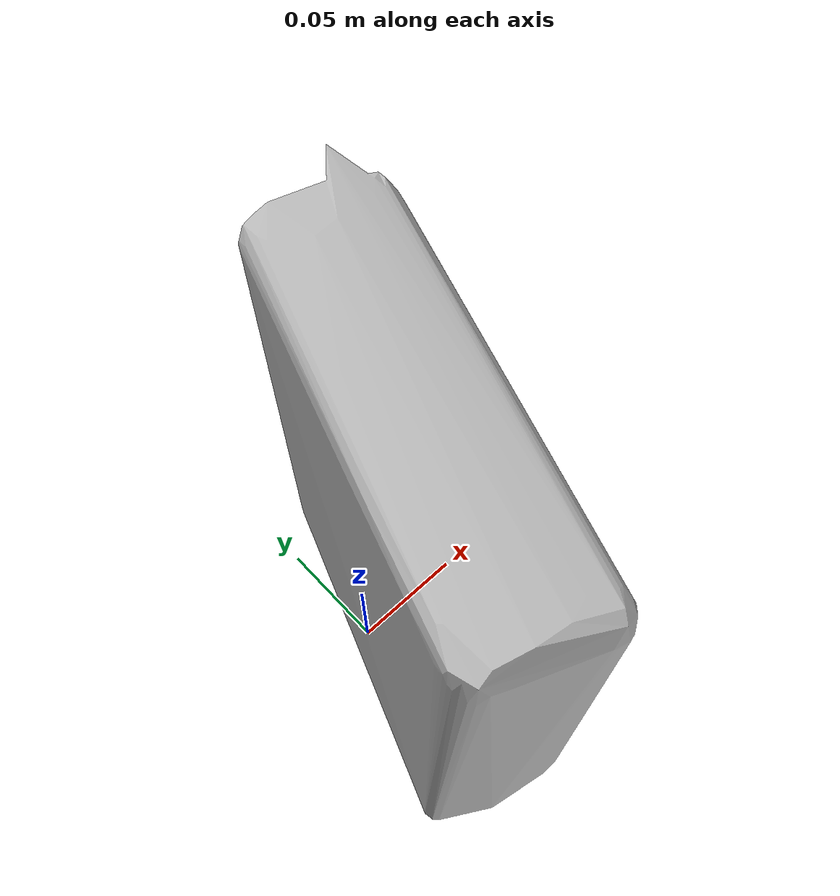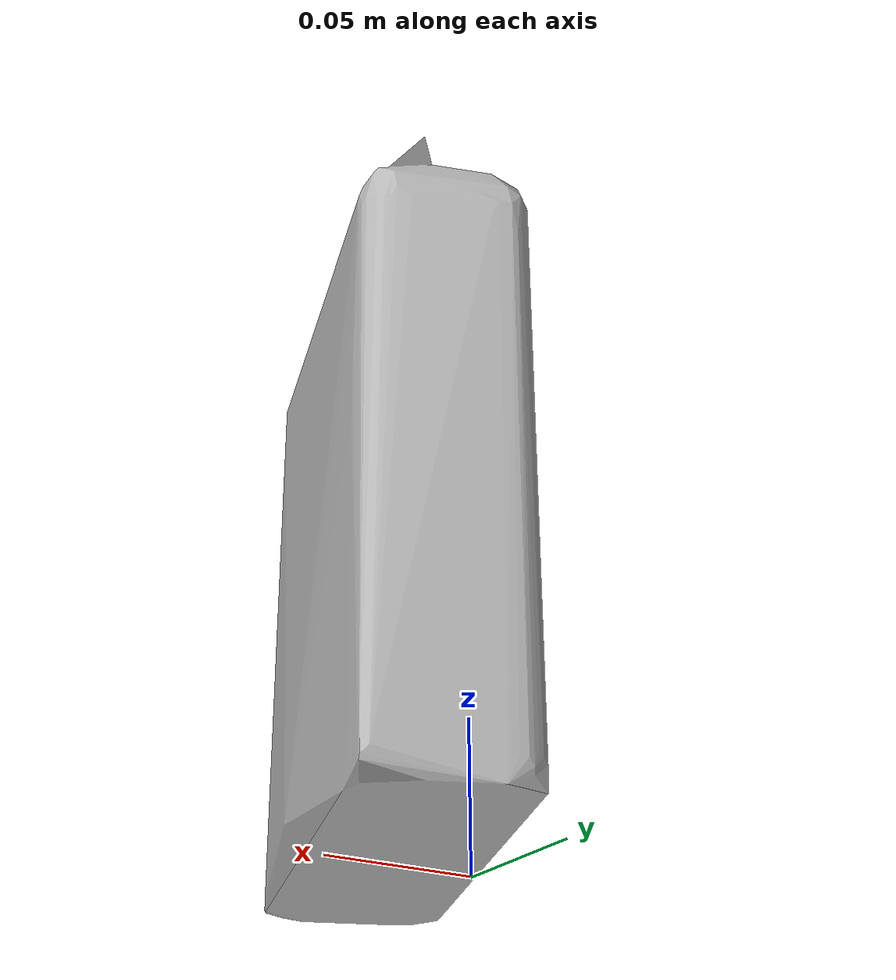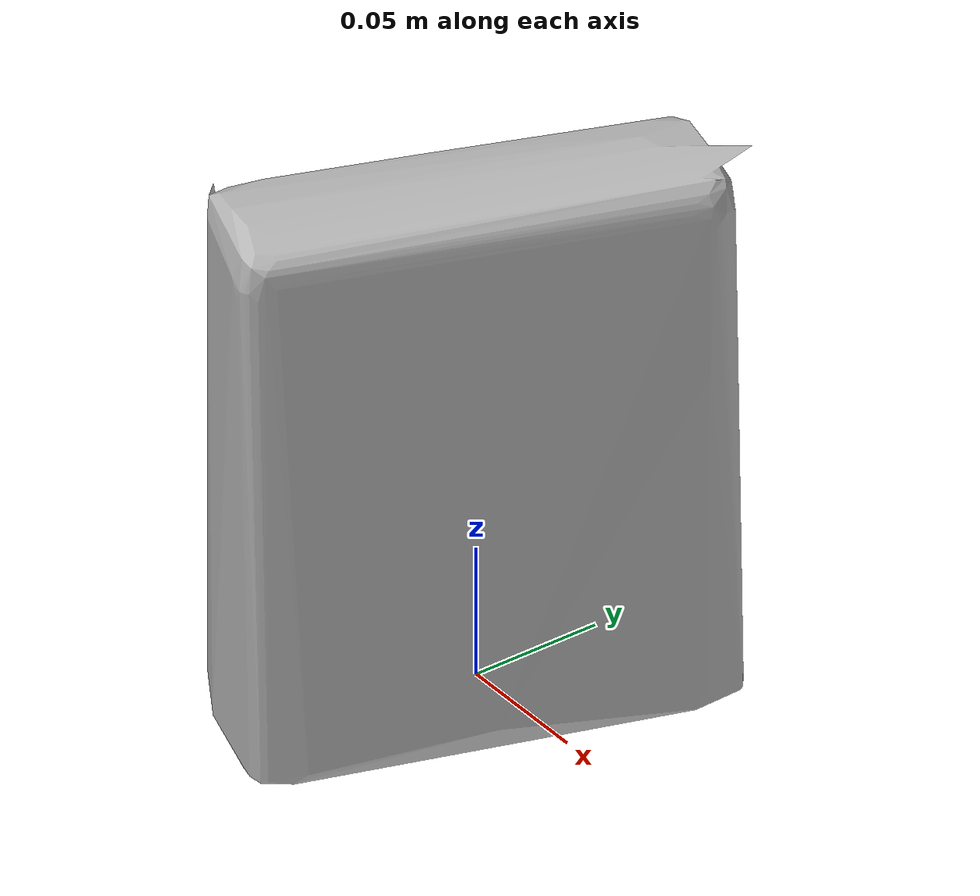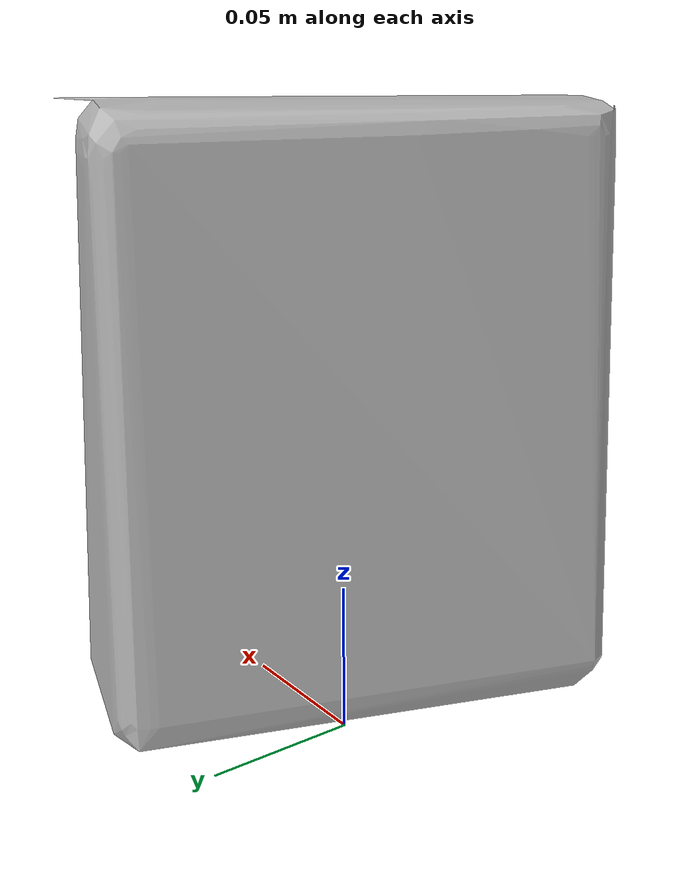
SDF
<?xml version='1.0'?>
<sdf version="1.4">
  <model name="ritz_crackers">
    <static>false</static>
    <link name="link">
      <inertial>
        <pose>0.017623156028097324 -0.015842579271502757 0.10069175666284243 -3.1059152056908106 0.006894784923825338 2.8029749637161387</pose>
        <mass>0.1841833439866736</mass>
        <inertia>
          <ixx>0.0009904645110744386</ixx>
          <ixy>-5.806328503729975e-20</ixy>
          <ixz>-1.2686269928570302e-21</ixz>
          <iyy>0.0006293399665505688</iyy>
          <iyz>-4.344553023163804e-21</iyz>
          <izz>0.0004600358921808509</izz>
        </inertia>
      </inertial>
      <collision name="collision">
        <geometry>
          <mesh>
            <!-- Use a downsampled mesh for collisions -->
            <uri>model:///ritz_crackers/ritz_crackers_250_collision.obj</uri>
	        </mesh>
        </geometry>
        <surface>
      </surface>
      </collision>
      <visual name="visual">
        <geometry>
          <mesh>
            <uri>model:///ritz_crackers/optimized_tsdf_texture_mapped_mesh.obj</uri>
	        </mesh>
        </geometry>
        <material>
          <script>
            <uri>model:///ritz_crackers/ritz_crackers.material</uri>
            <name>ritz_crackers</name>
          </script>
        </material>
      </visual>
    </link>
  </model>
</sdf>
